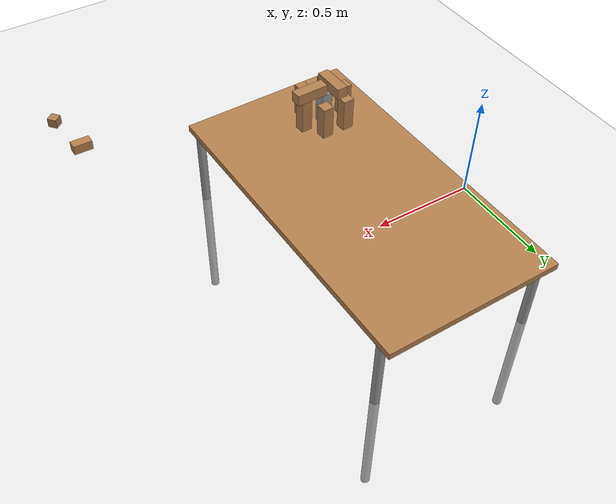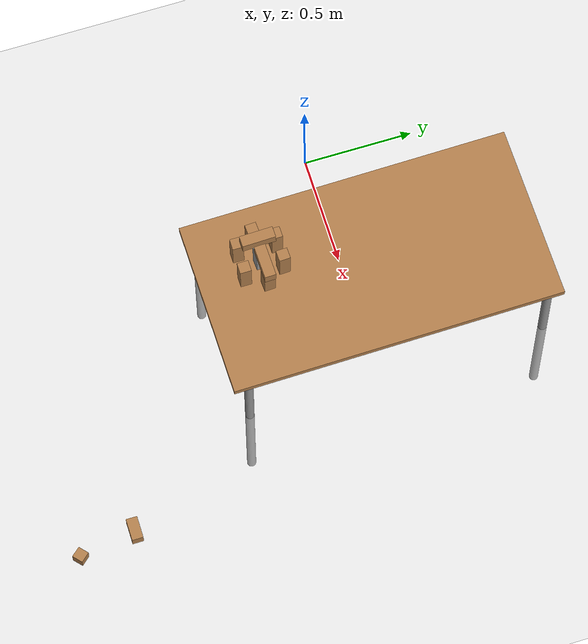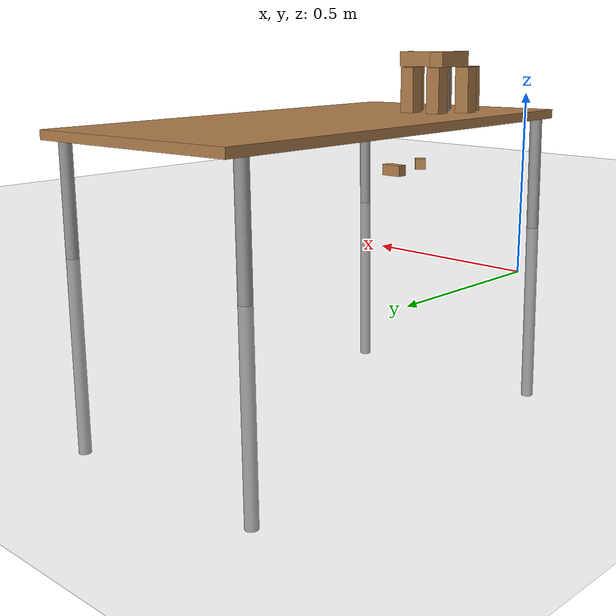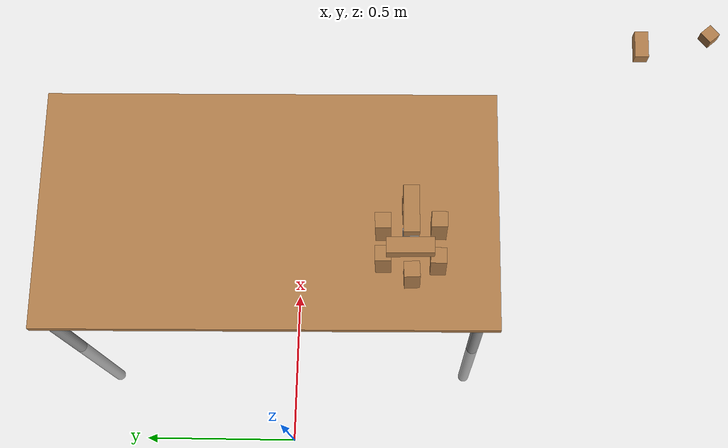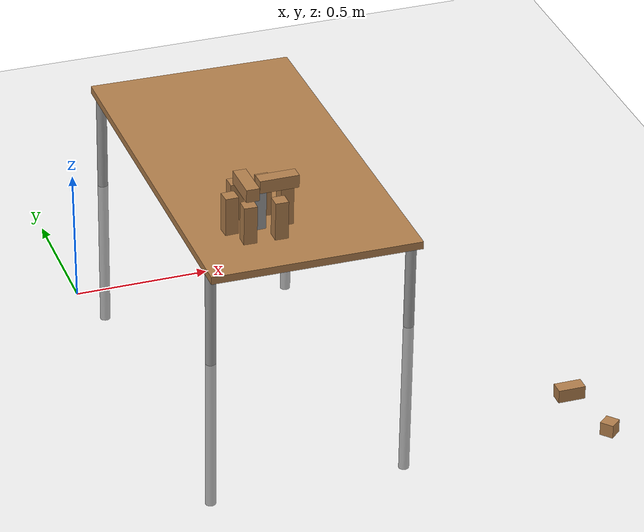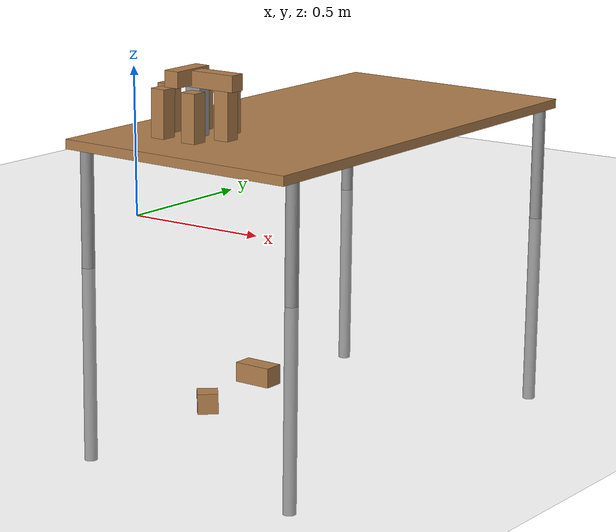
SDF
<sdf version="1.4">
 <world name="default">
  <model name="ground_plane">
   <static>1</static>
   <link name="link">
    <collision name="collision">
     <geometry><plane><normal>0 0 1</normal><size>100 100</size></plane></geometry>
     <surface><friction><ode><mu>100</mu><mu2>50</mu2></ode></friction></surface>
    </collision>
    <visual name="visual">
     <cast_shadows>0</cast_shadows>
     <geometry><plane><normal>0 0 1</normal><size>100 100</size></plane></geometry>
     <material>
      <script><uri>file://media/materials/scripts/gazebo.material</uri><name>Gazebo/Grey</name></script>
     </material>
    </visual>
    <velocity_decay><linear>0</linear><angular>0</angular></velocity_decay>
   </link>
  </model>
  <light name="sun" type="directional">
   <pose>0 0 10 0 -0 0</pose>
   <diffuse>0.8 0.8 0.8 1</diffuse>
   <specular>0.2 0.2 0.2 1</specular>
   <attenuation>
    <range>1000</range>
    <constant>0.9</constant>
    <linear>0.01</linear>
    <quadratic>0.001</quadratic>
   </attenuation>
   <direction>-0.5 0.1 -0.9</direction>
  </light>
  <physics type="ode">
   <real_time_update_rate>1000</real_time_update_rate>
   <gravity>0 0 -9.81</gravity>
   <max_step_size>0.001</max_step_size>
   <real_time_factor>1</real_time_factor>
  </physics>
  <scene><ambient>0.4 0.4 0.4 1</ambient><background>0.7 0.7 0.7 1</background><shadows>1</shadows></scene>
  <spherical_coordinates>
   <surface_model>EARTH_WGS84</surface_model>
   <latitude_deg>0</latitude_deg>
   <longitude_deg>0</longitude_deg>
   <elevation>0</elevation>
   <heading_deg>0</heading_deg>
  </spherical_coordinates>
  <model name="custom_2">
   <link name="link">
    <inertial>
     <mass>0.0565</mass>
     <inertia>
      <ixx>2.35417e-05</ixx>
      <ixy>0</ixy>
      <ixz>0</ixz>
      <iyy>2.35417e-05</iyy>
      <iyz>0</iyz>
      <izz>2.35417e-05</izz>
     </inertia>
    </inertial>
    <collision name="collision">
     <geometry><box><size>0.05 0.05 0.1</size></box></geometry>
     <surface><contact><ode><max_vel>0.1</max_vel><min_depth>0.001</min_depth></ode></contact></surface>
    </collision>
    <visual name="visual">
     <geometry><box><size>0.05 0.05 0.1</size></box></geometry>
     <material>
      <script><uri>file://media/materials/scripts/gazebo.material</uri><name>Gazebo/Wood</name></script>
     </material>
    </visual>
    <velocity_decay><linear>0</linear><angular>0</angular></velocity_decay>
   </link>
   <pose>1.46028 -1.22738 0.024461 1.5708 -1.57077 -1.57886</pose>
   <static>0</static>
  </model>
  <model name="custom_3">
   <link name="link">
    <inertial>
     <mass>0.0565</mass>
     <inertia>
      <ixx>2.35417e-05</ixx>
      <ixy>0</ixy>
      <ixz>0</ixz>
      <iyy>2.35417e-05</iyy>
      <iyz>0</iyz>
      <izz>2.35417e-05</izz>
     </inertia>
    </inertial>
    <collision name="collision">
     <geometry><box><size>0.05 0.05 0.05</size></box></geometry>
     <surface><contact><ode><max_vel>0.1</max_vel><min_depth>0.001</min_depth></ode></contact></surface>
    </collision>
    <visual name="visual">
     <geometry><box><size>0.05 0.05 0.05</size></box></geometry>
     <material>
      <script><uri>file://media/materials/scripts/gazebo.material</uri><name>Gazebo/Wood</name></script>
     </material>
    </visual>
    <velocity_decay><linear>0</linear><angular>0</angular></velocity_decay>
   </link>
   <pose>1.50538 -1.48276 0.02492 -0.000725 -0.000394 0.713172</pose>
   <static>0</static>
  </model>
  <model name="custom_1_0">
   <link name="link">
    <inertial>
     <mass>0.0565</mass>
     <inertia>
      <ixx>2.35417e-05</ixx>
      <ixy>0</ixy>
      <ixz>0</ixz>
      <iyy>2.35417e-05</iyy>
      <iyz>0</iyz>
      <izz>2.35417e-05</izz>
     </inertia>
    </inertial>
    <collision name="collision">
     <geometry><box><size>0.05 0.05 0.15</size></box></geometry>
     <surface><contact><ode><max_vel>0.1</max_vel><min_depth>0.001</min_depth></ode></contact></surface>
    </collision>
    <visual name="visual">
     <geometry><box><size>0.05 0.05 0.15</size></box></geometry>
     <material>
      <script><uri>file://media/materials/scripts/gazebo.material</uri><name>Gazebo/Wood</name></script>
     </material>
    </visual>
    <velocity_decay><linear>0</linear><angular>0</angular></velocity_decay>
   </link>
   <pose>0.524525 -0.296116 0.471107 -0.012153 0.003222 -1.55503</pose>
   <static>0</static>
  </model>
  <model name="custom_table">
   <static>1</static>
   <link name="link">
    <collision name="surface">
     <geometry><box><size>1.5 0.8 0.03</size></box></geometry>
     <surface><friction><ode><mu>0.6</mu><mu2>0.6</mu2></ode></friction></surface>
    </collision>
    <visual name="visual1">
     <geometry><box><size>1.5 0.8 0.03</size></box></geometry>
     <material>
      <script><uri>file://media/materials/scripts/gazebo.material</uri><name>Gazebo/Wood</name></script>
     </material>
    </visual>
    <collision name="front_left_leg">
     <pose>0.68 0.38 0.5 0 -0 0</pose>
     <geometry><cylinder><radius>0.02</radius><length>1</length></cylinder></geometry>
    </collision>
    <visual name="front_left_leg">
     <pose>0.68 0.38 0.5 0 -0 0</pose>
     <geometry><cylinder><radius>0.02</radius><length>1</length></cylinder></geometry>
     <material>
      <script><uri>file://media/materials/scripts/gazebo.material</uri><name>Gazebo/Grey</name></script>
     </material>
    </visual>
    <collision name="front_right_leg">
     <pose>0.68 -0.38 0.5 0 -0 0</pose>
     <geometry><cylinder><radius>0.02</radius><length>1</length></cylinder></geometry>
    </collision>
    <visual name="front_right_leg">
     <pose>0.68 -0.38 0.5 0 -0 0</pose>
     <geometry><cylinder><radius>0.02</radius><length>1</length></cylinder></geometry>
     <material>
      <script><uri>file://media/materials/scripts/gazebo.material</uri><name>Gazebo/Grey</name></script>
     </material>
    </visual>
    <collision name="back_right_leg">
     <pose>-0.68 -0.38 0.5 0 -0 0</pose>
     <geometry><cylinder><radius>0.02</radius><length>1</length></cylinder></geometry>
    </collision>
    <visual name="back_right_leg">
     <pose>-0.68 -0.38 0.5 0 -0 0</pose>
     <geometry><cylinder><radius>0.02</radius><length>1</length></cylinder></geometry>
     <material>
      <script><uri>file://media/materials/scripts/gazebo.material</uri><name>Gazebo/Grey</name></script>
     </material>
    </visual>
    <collision name="back_left_leg">
     <pose>-0.68 0.38 0.5 0 -0 0</pose>
     <geometry><cylinder><radius>0.02</radius><length>1</length></cylinder></geometry>
    </collision>
    <visual name="back_left_leg">
     <pose>-0.68 0.38 0.5 0 -0 0</pose>
     <geometry><cylinder><radius>0.02</radius><length>1</length></cylinder></geometry>
     <material>
      <script><uri>file://media/materials/scripts/gazebo.material</uri><name>Gazebo/Grey</name></script>
     </material>
    </visual>
    <velocity_decay><linear>0</linear><angular>0</angular></velocity_decay>
   </link>
   <pose>0.706521 0.08117 0.378441 -3.12533 0.000225 1.5819</pose>
  </model>
  <model name="custom_1_1">
   <link name="link">
    <inertial>
     <mass>0.0565</mass>
     <inertia>
      <ixx>2.35417e-05</ixx>
      <ixy>0</ixy>
      <ixz>0</ixz>
      <iyy>2.35417e-05</iyy>
      <iyz>0</iyz>
      <izz>2.35417e-05</izz>
     </inertia>
    </inertial>
    <collision name="collision">
     <geometry><box><size>0.05 0.05 0.15</size></box></geometry>
     <surface><contact><ode><max_vel>0.1</max_vel><min_depth>0.001</min_depth></ode></contact></surface>
    </collision>
    <visual name="visual">
     <geometry><box><size>0.05 0.05 0.15</size></box></geometry>
     <material>
      <script><uri>file://media/materials/scripts/gazebo.material</uri><name>Gazebo/Wood</name></script>
     </material>
    </visual>
    <velocity_decay><linear>0</linear><angular>0</angular></velocity_decay>
   </link>
   <pose>0.475158 -0.386975 0.471535 0.001582 0.01905 0.056848</pose>
   <static>0</static>
  </model>
  <model name="custom_1_2">
   <link name="link">
    <inertial>
     <mass>0.0565</mass>
     <inertia>
      <ixx>2.35417e-05</ixx>
      <ixy>0</ixy>
      <ixz>0</ixz>
      <iyy>2.35417e-05</iyy>
      <iyz>0</iyz>
      <izz>2.35417e-05</izz>
     </inertia>
    </inertial>
    <collision name="collision">
     <geometry><box><size>0.05 0.05 0.15</size></box></geometry>
     <surface><contact><ode><max_vel>0.1</max_vel><min_depth>0.001</min_depth></ode></contact></surface>
    </collision>
    <visual name="visual">
     <geometry><box><size>0.05 0.05 0.15</size></box></geometry>
     <material>
      <script><uri>file://media/materials/scripts/gazebo.material</uri><name>Gazebo/Wood</name></script>
     </material>
    </visual>
    <velocity_decay><linear>0</linear><angular>0</angular></velocity_decay>
   </link>
   <pose>0.519575 -0.470039 0.470311 0.023672 0.001637 1.55839</pose>
   <static>0</static>
  </model>
  <model name="custom_1_3">
   <link name="link">
    <inertial>
     <mass>0.0565</mass>
     <inertia>
      <ixx>2.35417e-05</ixx>
      <ixy>0</ixy>
      <ixz>0</ixz>
      <iyy>2.35417e-05</iyy>
      <iyz>0</iyz>
      <izz>2.35417e-05</izz>
     </inertia>
    </inertial>
    <collision name="collision">
     <geometry><box><size>0.05 0.05 0.15</size></box></geometry>
     <surface><contact><ode><max_vel>0.1</max_vel><min_depth>0.001</min_depth></ode></contact></surface>
    </collision>
    <visual name="visual">
     <geometry><box><size>0.05 0.05 0.15</size></box></geometry>
     <material>
      <script><uri>file://media/materials/scripts/gazebo.material</uri><name>Gazebo/Wood</name></script>
     </material>
    </visual>
    <velocity_decay><linear>0</linear><angular>0</angular></velocity_decay>
   </link>
   <pose>0.685847 -0.37985 0.468786 0.000521 0.008909 0.0479</pose>
   <static>0</static>
  </model>
  <model name="custom_1_4">
   <link name="link">
    <inertial>
     <mass>0.0565</mass>
     <inertia>
      <ixx>2.35417e-05</ixx>
      <ixy>0</ixy>
      <ixz>0</ixz>
      <iyy>2.35417e-05</iyy>
      <iyz>0</iyz>
      <izz>2.35417e-05</izz>
     </inertia>
    </inertial>
    <collision name="collision">
     <geometry><box><size>0.05 0.05 0.15</size></box></geometry>
     <surface><contact><ode><max_vel>0.1</max_vel><min_depth>0.001</min_depth></ode></contact></surface>
    </collision>
    <visual name="visual">
     <geometry><box><size>0.05 0.05 0.15</size></box></geometry>
     <material>
      <script><uri>file://media/materials/scripts/gazebo.material</uri><name>Gazebo/Wood</name></script>
     </material>
    </visual>
    <velocity_decay><linear>0</linear><angular>0</angular></velocity_decay>
   </link>
   <pose>0.636275 -0.471469 0.469703 0.003124 0.015965 -0.001573</pose>
   <static>0</static>
  </model>
  <model name="custom_1_5">
   <link name="link">
    <inertial>
     <mass>0.0565</mass>
     <inertia>
      <ixx>2.35417e-05</ixx>
      <ixy>0</ixy>
      <ixz>0</ixz>
      <iyy>2.35417e-05</iyy>
      <iyz>0</iyz>
      <izz>2.35417e-05</izz>
     </inertia>
    </inertial>
    <collision name="collision">
     <geometry><box><size>0.05 0.05 0.15</size></box></geometry>
     <surface><contact><ode><max_vel>0.1</max_vel><min_depth>0.001</min_depth></ode></contact></surface>
    </collision>
    <visual name="visual">
     <geometry><box><size>0.05 0.05 0.15</size></box></geometry>
     <material>
      <script><uri>file://media/materials/scripts/gazebo.material</uri><name>Gazebo/Wood</name></script>
     </material>
    </visual>
    <velocity_decay><linear>0</linear><angular>0</angular></velocity_decay>
   </link>
   <pose>0.630202 -0.294539 0.469816 0.001279 0.016259 0.028444</pose>
   <static>0</static>
  </model>
  <model name="custom_1_6">
   <link name="link">
    <inertial>
     <mass>0.0565</mass>
     <inertia>
      <ixx>2.35417e-05</ixx>
      <ixy>0</ixy>
      <ixz>0</ixz>
      <iyy>2.35417e-05</iyy>
      <iyz>0</iyz>
      <izz>2.35417e-05</izz>
     </inertia>
    </inertial>
    <collision name="collision">
     <geometry><box><size>0.05 0.05 0.15</size></box></geometry>
     <surface><contact><ode><max_vel>0.1</max_vel><min_depth>0.001</min_depth></ode></contact></surface>
    </collision>
    <visual name="visual">
     <geometry><box><size>0.05 0.05 0.15</size></box></geometry>
     <material>
      <script><uri>file://media/materials/scripts/gazebo.material</uri><name>Gazebo/Wood</name></script>
     </material>
    </visual>
    <velocity_decay><linear>0</linear><angular>0</angular></velocity_decay>
   </link>
   <pose>0.539847 -0.38111 0.570812 -1.72571 1.54962 3.00893</pose>
   <static>0</static>
  </model>
  <model name="custom_1_7">
   <link name="link">
    <inertial>
     <mass>0.0565</mass>
     <inertia>
      <ixx>2.35417e-05</ixx>
      <ixy>0</ixy>
      <ixz>0</ixz>
      <iyy>2.35417e-05</iyy>
      <iyz>0</iyz>
      <izz>2.35417e-05</izz>
     </inertia>
    </inertial>
    <collision name="collision">
     <geometry><box><size>0.05 0.05 0.15</size></box></geometry>
     <surface><contact><ode><max_vel>0.1</max_vel><min_depth>0.001</min_depth></ode></contact></surface>
    </collision>
    <visual name="visual">
     <geometry><box><size>0.05 0.05 0.15</size></box></geometry>
     <material>
      <script><uri>file://media/materials/scripts/gazebo.material</uri><name>Gazebo/Wood</name></script>
     </material>
    </visual>
    <velocity_decay><linear>0</linear><angular>0</angular></velocity_decay>
   </link>
   <pose>0.656874 -0.383097 0.568978 2.87663 1.55772 2.89794</pose>
   <static>0</static>
  </model>
  <model name="target">
   <link name="link">
    <inertial>
     <mass>0.0565</mass>
     <inertia>
      <ixx>2.35417e-05</ixx>
      <ixy>0</ixy>
      <ixz>0</ixz>
      <iyy>2.35417e-05</iyy>
      <iyz>0</iyz>
      <izz>2.35417e-05</izz>
     </inertia>
    </inertial>
    <collision name="collision">
     <geometry><box><size>0.05 0.05 0.15</size></box></geometry>
     <surface><contact><ode><max_vel>0.1</max_vel><min_depth>0.001</min_depth></ode></contact></surface>
    </collision>
    <visual name="visual">
     <geometry><box><size>0.05 0.05 0.15</size></box></geometry>
     <material>
      <script><uri>file://media/materials/scripts/gazebo.material</uri><name>Gazebo/Grey</name></script>
     </material>
    </visual>
    <velocity_decay><linear>0</linear><angular>0</angular></velocity_decay>
   </link>
   <pose>0.580676 -0.38278 0.469924 0.005332 0.019132 0.058902</pose>
   <static>0</static>
  </model>
 </world>
</sdf>
